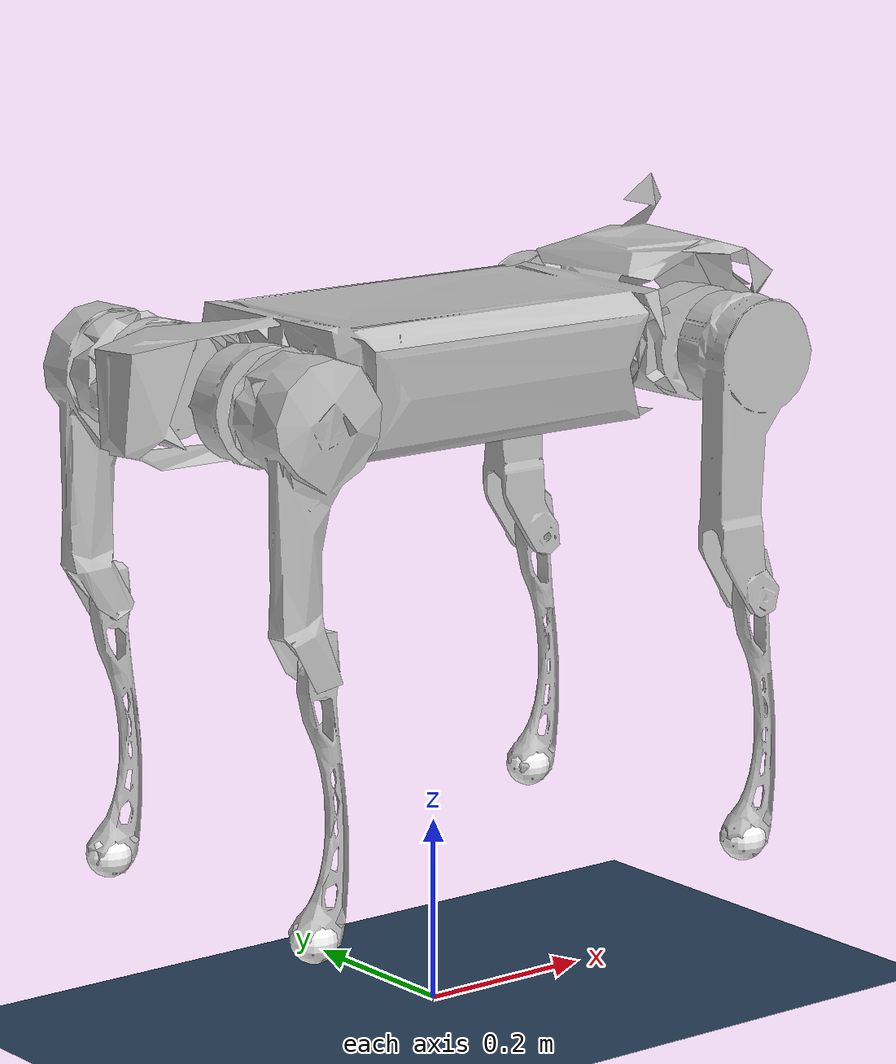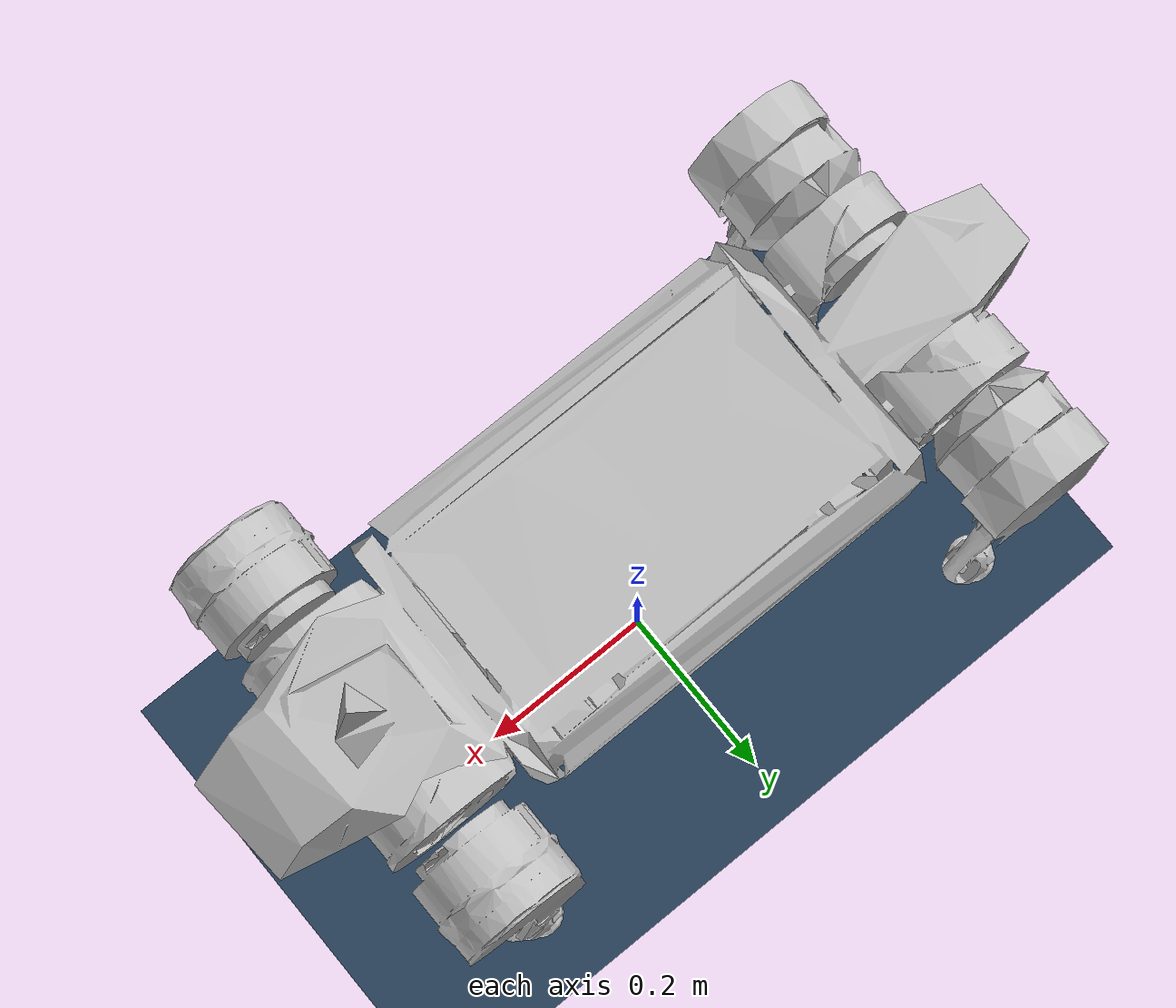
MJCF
<mujoco model="galileo_mini_15_scene">
    <include file="galileo_mini_15.xml" />
    <option timestep="0.001" integrator="RK4" />

    <visual>
        <headlight diffuse="0.6 0.6 0.6" ambient="0.3 0.3 0.3" specular="0 0 0" />
        <rgba haze="0.15 0.25 0.35 1" />
        <global azimuth="-130" elevation="-20" />
    </visual>

    <asset>
        <texture type="skybox" builtin="gradient" rgb1="0.3 0.5 0.7" rgb2="0 0 0" width="512"
            height="3072" />
        <texture type="2d" name="groundplane" builtin="checker" mark="edge" rgb1="0.2 0.3 0.4"
            rgb2="0.1 0.2 0.3"
            markrgb="0.8 0.8 0.8" width="300" height="300" />
        <material name="groundplane" texture="groundplane" texuniform="true" texrepeat="5 5"
            reflectance="0.2" />
    </asset>

    <worldbody>
        <light pos="0 0 1.5" dir="0 0 -1" directional="true" />
        <geom name="floor" size="0 0 0.05" type="plane" material="groundplane" />
    </worldbody>

</mujoco>

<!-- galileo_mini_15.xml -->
<mujoco model="galileo_mini15">
  <compiler angle="radian" meshdir="../meshes/" autolimits="true" />

  <asset>
    <mesh name="base_link" file="trunk.STL" />
    <mesh name="FR_abd_link" file="FL_abd_link.STL" scale="1 -1 1" />
    <mesh name="FR_hip_link" file="FL_hip_link.STL" scale="1 -1 1" />
    <mesh name="FR_knee_link" file="FL_knee_link.STL" scale="1 -1 1" />
    <mesh name="HR_abd_link" file="RL_abd_link.STL" scale="1 -1 1" />
    <mesh name="HR_hip_link" file="RL_hip_link.STL" scale="1 -1 1" />
    <mesh name="HR_knee_link" file="RL_knee_link.STL" scale="1 -1 1" />
    <mesh name="FL_abd_link" file="FL_abd_link.STL" />
    <mesh name="FL_hip_link" file="FL_hip_link.STL" />
    <mesh name="FL_knee_link" file="FL_knee_link.STL" />
    <mesh name="HL_abd_link" file="RL_abd_link.STL" />
    <mesh name="HL_hip_link" file="RL_hip_link.STL" />
    <mesh name="HL_knee_link" file="RL_knee_link.STL" />
  </asset>

  <worldbody>
    <body name="base_link" pos="0 0 0.7">
      <inertial pos="0.01435 0.0040863 0.0010607"
        quat="-0.000902013 0.728669 -0.0025851 0.68486" mass="16.057"
        diaginertia="0.447226 0.407374 0.0809415" />
      <joint name="floating_base_joint" type="free" />
      <geom type="mesh" contype="0" conaffinity="0" group="1" density="0"
        rgba="0.75294 0.75294 0.75294 1" mesh="base_link" />
      <geom type="mesh" rgba="0.75294 0.75294 0.75294 1" mesh="base_link" />
      <site name="site_imu" pos="0 0 0" />

      <body name="FR_abd_link" pos="0.2065 -0.065 0">
        <inertial pos="0.074261 -0.010662 0.00797"
          quat="0.529655 0.515531 0.47108 0.481433" mass="1.748"
          diaginertia="0.0014516 0.00107337 0.000660418" />
        <joint name="FR_abd_joint" pos="0 0 0" axis="1 0 0" range="-0.80285 0.80285" />
        <geom type="mesh" contype="0" conaffinity="0" group="1" density="0"
          rgba="0.75294 0.75294 0.75294 1" mesh="FR_abd_link" />
        <geom type="mesh" rgba="0.75294 0.75294 0.75294 1" mesh="FR_abd_link" />
        <body name="FR_hip_link" pos="0.08 -0.119 0">
          <inertial pos="-0.0014 0.0344 -0.0174"
            quat="0.985102 -0.0970444 0.0193668 -0.140648" mass="2.22606"
            diaginertia="0.00945738 0.00933332 0.00202047" />
          <joint name="FR_hip_joint" pos="0 0 0" axis="0 1 0" range="-4.1888 1.0472" />
          <geom type="mesh" contype="0" conaffinity="0" group="1" density="0"
            rgba="0.75294 0.75294 0.75294 1" mesh="FR_hip_link" />
          <geom type="mesh" rgba="0.75294 0.75294 0.75294 1" mesh="FR_hip_link" />
          <body name="FR_knee_link" pos="0 -0.01 -0.26">
            <inertial pos="0.00432668 0.0101814 -0.133929"
              quat="0.728618 -0.00369805 -0.00253684 0.684905" mass="0.336305"
              diaginertia="0.00482398 0.00477364 9.17969e-05" />
            <joint name="FR_knee_joint" pos="0 0 0" axis="0 1 0" range="-2.6965 -0.9163" />
            <geom type="mesh" contype="0" conaffinity="0" group="1" density="0"
              rgba="0.75294 0.75294 0.75294 1" mesh="FR_knee_link" />
            <geom type="mesh" rgba="0.75294 0.75294 0.75294 1" mesh="FR_knee_link" />
            <geom size="0.025" pos="-0.007061 0.0105 -0.26749" contype="0" conaffinity="0" group="1"
              density="0" rgba="1 1 1 1" friction="0.7 0.02 0.01" />
            <geom name="FR_foot_link" size="0.025" pos="-0.007061 0.0105 -0.26749" rgba="1 1 1 1"
              friction="0.7 0.02 0.01" />
          </body>
        </body>
      </body>
      <body name="HR_abd_link" pos="-0.2065 -0.065 0">
        <inertial pos="0.074261 -0.010662 0.00797"
          quat="0.47108 0.481433 0.529655 0.515531" mass="1.748"
          diaginertia="0.0014516 0.00107337 0.000660418" />
        <joint name="HR_abd_joint" pos="0 0 0" axis="1 0 0" range="-0.80285 0.80285" />
        <geom type="mesh" contype="0" conaffinity="0" group="1" density="0"
          rgba="0.75294 0.75294 0.75294 1" mesh="HR_abd_link" />
        <geom type="mesh" rgba="0.75294 0.75294 0.75294 1" mesh="HR_abd_link" />
        <body name="HR_hip_link" pos="-0.08 -0.119 0">
          <inertial pos="-0.0014 0.0344 -0.0174"
            quat="0.985102 -0.0970444 0.0193668 -0.140648" mass="2.22606"
            diaginertia="0.00945738 0.00933332 0.00202047" />
          <joint name="HR_hip_joint" pos="0 0 0" axis="0 1 0" range="-4.1888 1.0472" />
          <geom type="mesh" contype="0" conaffinity="0" group="1" density="0"
            rgba="0.75294 0.75294 0.75294 1" mesh="HR_hip_link" />
          <geom type="mesh" rgba="0.75294 0.75294 0.75294 1" mesh="HR_hip_link" />
          <body name="HR_knee_link" pos="0 -0.01 -0.26">
            <inertial pos="0.00432668 0.0101814 -0.133929"
              quat="0.728618 -0.00369805 -0.00253684 0.684905" mass="0.336305"
              diaginertia="0.00482398 0.00477364 9.17969e-05" />
            <joint name="HR_knee_joint" pos="0 0 0" axis="0 1 0" range="-2.6965 -0.9163" />
            <geom type="mesh" contype="0" conaffinity="0" group="1" density="0"
              rgba="0.75294 0.75294 0.75294 1" mesh="HR_knee_link" />
            <geom type="mesh" rgba="0.75294 0.75294 0.75294 1" mesh="HR_knee_link" />
            <geom size="0.025" pos="-0.007061 0.0105 -0.26749" contype="0" conaffinity="0" group="1"
              density="0" rgba="1 1 1 1" friction="0.7 0.02 0.01" />
            <geom size="0.025" pos="-0.007061 0.0105 -0.26749" rgba="1 1 1 1"
              friction="0.7 0.02 0.01" />
          </body>
        </body>
      </body>
      <body name="FL_abd_link" pos="0.2065 0.065 0">
        <inertial pos="0.074261 0.010662 0.00797"
          quat="0.481433 0.47108 0.515531 0.529655" mass="1.748"
          diaginertia="0.0014516 0.00107337 0.000660418" />
        <joint name="FL_abd_joint" pos="0 0 0" axis="1 0 0" range="-0.80285 0.80285" />
        <geom type="mesh" contype="0" conaffinity="0" group="1" density="0"
          rgba="0.75294 0.75294 0.75294 1" mesh="FL_abd_link" />
        <geom type="mesh" rgba="0.75294 0.75294 0.75294 1" mesh="FL_abd_link" />
        <body name="FL_hip_link" pos="0.08 0.119 0">
          <inertial pos="-0.0014 -0.0344 -0.0174"
            quat="0.985102 0.0970444 0.0193668 0.140648" mass="2.22606"
            diaginertia="0.00945738 0.00933332 0.00202047" />
          <joint name="FL_hip_joint" pos="0 0 0" axis="0 1 0" range="-4.1888 1.0472" />
          <geom type="mesh" contype="0" conaffinity="0" group="1" density="0"
            rgba="0.75294 0.75294 0.75294 1" mesh="FL_hip_link" />
          <geom type="mesh" rgba="0.75294 0.75294 0.75294 1" mesh="FL_hip_link" />
          <body name="FL_knee_link" pos="0 0.01 -0.26">
            <inertial pos="0.00432668 -0.0101814 -0.133929"
              quat="0.684905 -0.00253684 -0.00369805 0.728618" mass="0.336305"
              diaginertia="0.00482398 0.00477364 9.17969e-05" />
            <joint name="FL_knee_joint" pos="0 0 0" axis="0 1 0" range="-2.6965 -0.9163" />
            <geom type="mesh" contype="0" conaffinity="0" group="1" density="0"
              rgba="0.75294 0.75294 0.75294 1" mesh="FL_knee_link" />
            <geom type="mesh" rgba="0.75294 0.75294 0.75294 1" mesh="FL_knee_link" />
            <geom size="0.025" pos="-0.007061 -0.0105 -0.26749" contype="0" conaffinity="0"
              group="1" density="0" rgba="1 1 1 1" friction="0.7 0.02 0.01" />
            <geom name="FL_foot_link" size="0.025" pos="-0.007061 -0.0105 -0.26749"
              rgba="1 1 1 1" friction="0.7 0.02 0.01" />
          </body>
        </body>
      </body>
      <body name="HL_abd_link" pos="-0.2065 0.065 0">
        <inertial pos="0.074261 0.010662 0.00797"
          quat="0.515531 0.529655 0.481433 0.47108" mass="1.748"
          diaginertia="0.0014516 0.00107337 0.000660418" />
        <joint name="HL_abd_joint" pos="0 0 0" axis="1 0 0" range="-0.80285 0.80285" />
        <geom type="mesh" contype="0" conaffinity="0" group="1" density="0"
          rgba="0.75294 0.75294 0.75294 1" mesh="HL_abd_link" />
        <geom type="mesh" rgba="0.75294 0.75294 0.75294 1" mesh="HL_abd_link" />
        <body name="HL_hip_link" pos="-0.08 0.119 0">
          <inertial pos="-0.0014 -0.0344 -0.0174"
            quat="0.985102 0.0970444 0.0193668 0.140648" mass="2.22606"
            diaginertia="0.00945738 0.00933332 0.00202047" />
          <joint name="HL_hip_joint" pos="0 0 0" axis="0 1 0" range="-4.1888 1.0472" />
          <geom type="mesh" contype="0" conaffinity="0" group="1" density="0"
            rgba="0.75294 0.75294 0.75294 1" mesh="HL_hip_link" />
          <geom type="mesh" rgba="0.75294 0.75294 0.75294 1" mesh="HL_hip_link" />
          <body name="HL_knee_link" pos="0 0.01 -0.26">
            <inertial pos="0.00432668 -0.0101814 -0.133929"
              quat="0.684905 -0.00253684 -0.00369805 0.728618" mass="0.336305"
              diaginertia="0.00482398 0.00477364 9.17969e-05" />
            <joint name="HL_knee_joint" pos="0 0 0" axis="0 1 0" range="-2.6965 -0.9163" />
            <geom type="mesh" contype="0" conaffinity="0" group="1" density="0"
              rgba="0.75294 0.75294 0.75294 1" mesh="HL_knee_link" />
            <geom type="mesh" rgba="0.75294 0.75294 0.75294 1" mesh="HL_knee_link" />
            <geom size="0.025" pos="-0.007061 -0.0105 -0.26749" contype="0" conaffinity="0"
              group="1" density="0" rgba="1 1 1 1" friction="0.7 0.02 0.01" />
            <geom name="HL_foot_link" size="0.025" pos="-0.007061 -0.0105 -0.26749" rgba="1 1 1 1"
              friction="0.7 0.02 0.01" />
          </body>
        </body>
      </body>
    </body>
  </worldbody>

  <actuator>
    <motor name="FR_abd_joint" joint="FR_abd_joint" gear="1" ctrllimited="true"
      ctrlrange="-180 180" />
    <motor name="HR_abd_joint" joint="HR_abd_joint" gear="1" ctrllimited="true"
      ctrlrange="-180 180" />
    <motor name="FL_abd_joint" joint="FL_abd_joint" gear="1" ctrllimited="true"
      ctrlrange="-180 180" />
    <motor name="HL_abd_joint" joint="HL_abd_joint" gear="1" ctrllimited="true"
      ctrlrange="-180 180" />

    <motor name="FR_hip_joint" joint="FR_hip_joint" gear="1" ctrllimited="true"
      ctrlrange="-180 180" />
    <motor name="HR_hip_joint" joint="HR_hip_joint" gear="1" ctrllimited="true"
      ctrlrange="-180 180" />
    <motor name="FL_hip_joint" joint="FL_hip_joint" gear="1" ctrllimited="true"
      ctrlrange="-180 180" />
    <motor name="HL_hip_joint" joint="HL_hip_joint" gear="1" ctrllimited="true"
      ctrlrange="-180 180" />

    <motor name="FR_knee_joint" joint="FR_knee_joint" gear="1" ctrllimited="true"
      ctrlrange="-180 180" />
    <motor name="HR_knee_joint" joint="HR_knee_joint" gear="1" ctrllimited="true"
      ctrlrange="-180 180" />
    <motor name="FL_knee_joint" joint="FL_knee_joint" gear="1" ctrllimited="true"
      ctrlrange="-180 180" />
    <motor name="HL_knee_joint" joint="HL_knee_joint" gear="1" ctrllimited="true"
      ctrlrange="-180 180" />
  </actuator>

  <sensor>
    <framequat name="imu_quat" objtype="site" objname="site_imu" />
    <accelerometer name="imu_acc" site="site_imu" />
    <gyro name="imu_gyro" site="site_imu" />
  </sensor>

  <contact>
    <exclude body1="base_link" body2="FR_abd_link" />
    <exclude body1="base_link" body2="HR_abd_link" />
    <exclude body1="base_link" body2="FL_abd_link" />
    <exclude body1="base_link" body2="HL_abd_link" />
    <exclude body1="base_link" body2="FR_hip_link" />
    <exclude body1="base_link" body2="HR_hip_link" />
    <exclude body1="base_link" body2="FL_hip_link" />
    <exclude body1="base_link" body2="HL_hip_link" />
  </contact>

  <keyframe>
    <key name="stand"
      qpos="0 0 0.38 1 0 0 0 0 0.72 -1.44 0 0.72 -1.44 0 0.72 -1.44 0 0.72 -1.44" />
    <key name="down"
      qpos="0 0 0.38 1 0 0 0 -0.5 1.05 -2.46 -0.5 1.05 -2.46 0.5 1.05 -2.46 0.5 1.05 -2.46" />
  </keyframe>

</mujoco>
